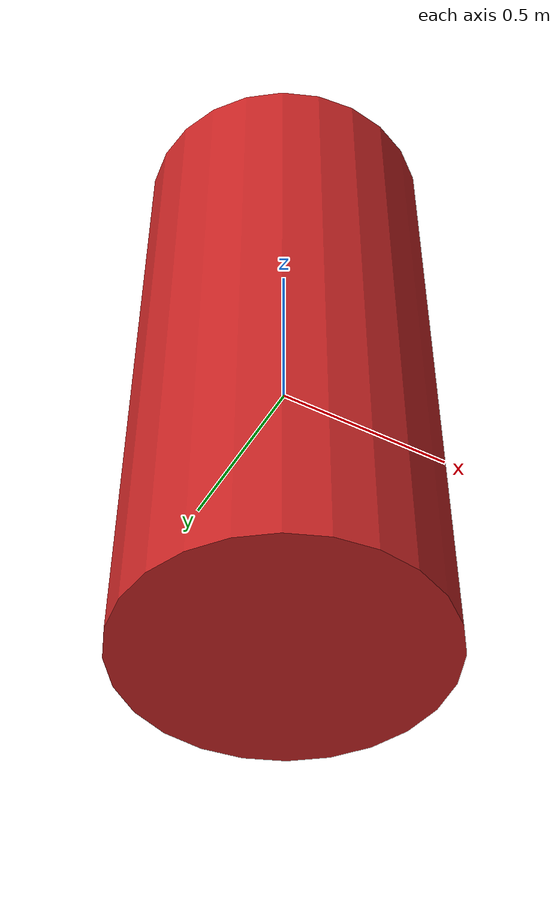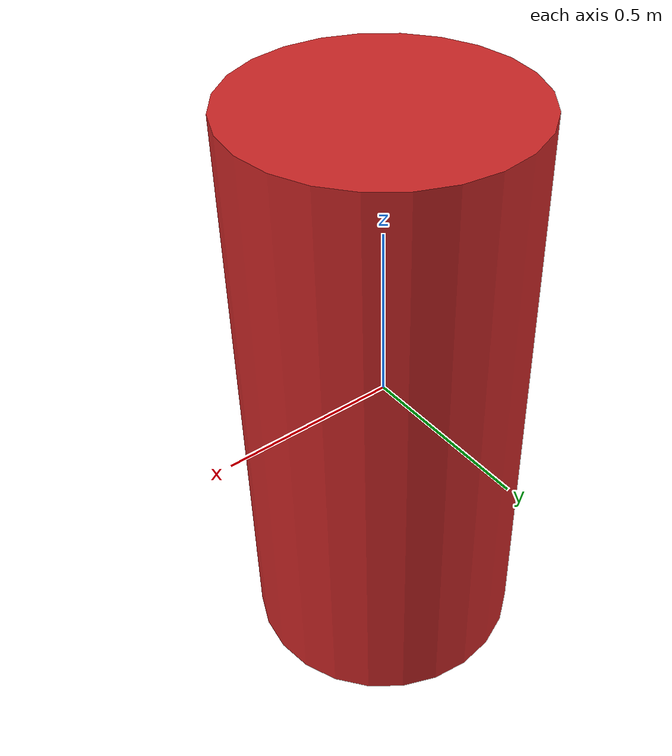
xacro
<robot name="mobile_cylinder" xmlns:xacro="http://ros.org/wiki/xacro">
  <xacro:arg name="model_name" default="teleop_obst" />
  <link name="$(arg model_name)">
    <kinematic>true</kinematic>
    <inertial>
      <origin xyz="0 0 0" />
      <mass value="70.0" />
      <inertia  ixx="18.43" ixy="0.0"  ixz="0.0"  iyy="18.43"  iyz="0.0"  izz="3.15" />
    </inertial>
    <visual>
      <geometry>
        <cylinder length="1.7" radius="0.4"/>
      </geometry>
    </visual>
    <collision>
      <geometry>
        <cylinder length="1.7" radius="0.4"/>
      </geometry>
      <surface>
        <friction>
          <ode>
            <mu>0.0</mu>
            <mu2>0.0</mu2>
          </ode>
        </friction>
      </surface>
    </collision>
  </link>
  <gazebo reference="$(arg model_name)">
    <material>Gazebo/Red</material>
    <mu>0.0</mu>
    <mu2>0.0</mu2>
  </gazebo>
  <gazebo>
    <plugin name="$(arg model_name)_controller_plugin" filename="libgazebo_ros_planar_move.so">
      <commandTopic>$(arg model_name)_cmd_vel</commandTopic>
      <odometryTopic>$(arg model_name)_odom</odometryTopic>
      <odometryFrame>$(arg model_name)_odom</odometryFrame>
      <odometryRate>20.0</odometryRate>
      <robotBaseFrame>$(arg model_name)</robotBaseFrame>
    </plugin>
  </gazebo>
</robot>
